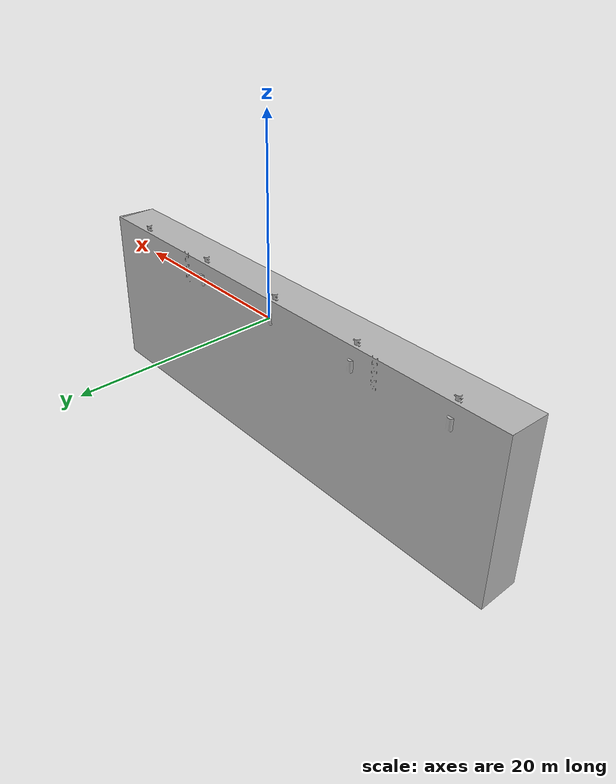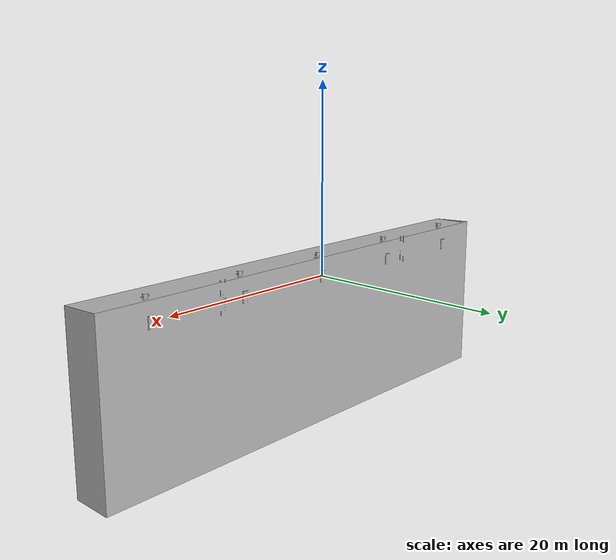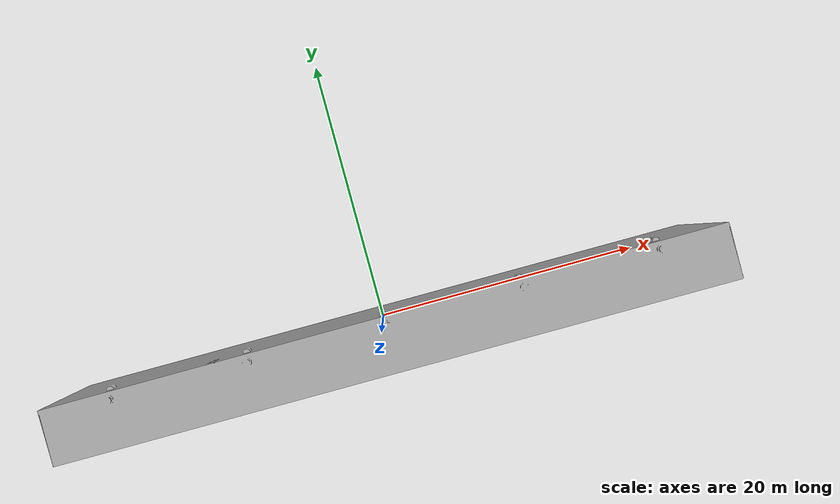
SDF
<?xml version="1.0" ?>
<sdf version="1.9">
  <model name="harbor_wall_straight">
    <static>true</static>
    <link name="quay_link">
      <!-- Main Analytical Collision Box (Guarantees zero physics glitches and sharp Ping2 GPU LiDAR returns) -->
      <collision name="quay_collision">
        <pose>0.0 -2.2500 -7.1000 0 0 0</pose>
        <geometry>
          <box>
            <size>55.0000 4.5000 18.2000</size>
          </box>
        </geometry>
        <surface>
          <friction>
            <ode>
              <mu>0.9</mu>
              <mu2>0.9</mu2>
            </ode>
          </friction>
          <contact>
            <ode>
              <kp>10000000.0</kp>
              <kd>1.0</kd>
            </ode>
          </contact>
        </surface>
      </collision>

      <!-- High-Fidelity Photorealistic Visual Mesh -->
      <visual name="quay_visual">
        <pose>0 0 0 0 0 0</pose>
        <geometry>
          <mesh>
            <uri>model://harbor_wall_straight/meshes/harbor_wall_straight.obj</uri>
          </mesh>
        </geometry>
      </visual>
    </link>
  </model>
</sdf>
